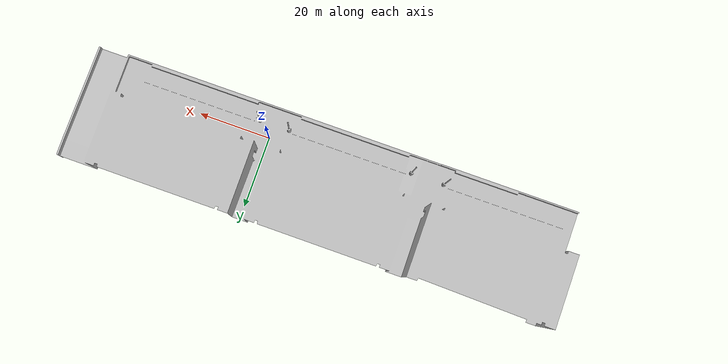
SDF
<?xml version="1.0" ?>
<sdf version="1.4">
  <world name="brl">
    <include>
      <uri>model://sun</uri>
    </include>
    <include>
      <uri>model://brl_small</uri>
      <name>brl_small</name>
      <pose>0 0 0 0 0 0</pose>
    </include>

  </world>
</sdf>

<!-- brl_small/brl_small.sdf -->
<sdf version="1.4">
  <model name="brl_small">
    <static>true</static>
    <link name="link">
      <pose>0 0 0 0 0 0</pose>
      <collision name="collision">
        <geometry>
          <mesh>
            <uri>model://brl_small/meshes/brl_small.stl</uri>
            <scale>1 1 1</scale>
          </mesh>
        </geometry>
      </collision>
      <visual name="visual">
        <geometry>
          <mesh>
            <uri>model://brl_small/meshes/brl_small.stl</uri>
            <scale>1 1 1</scale>
          </mesh>
        </geometry>
      </visual>
    </link>
  </model>
</sdf>
